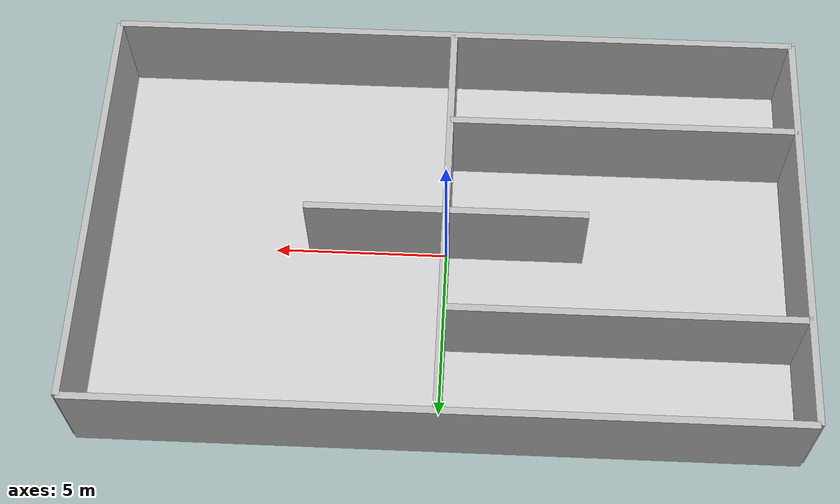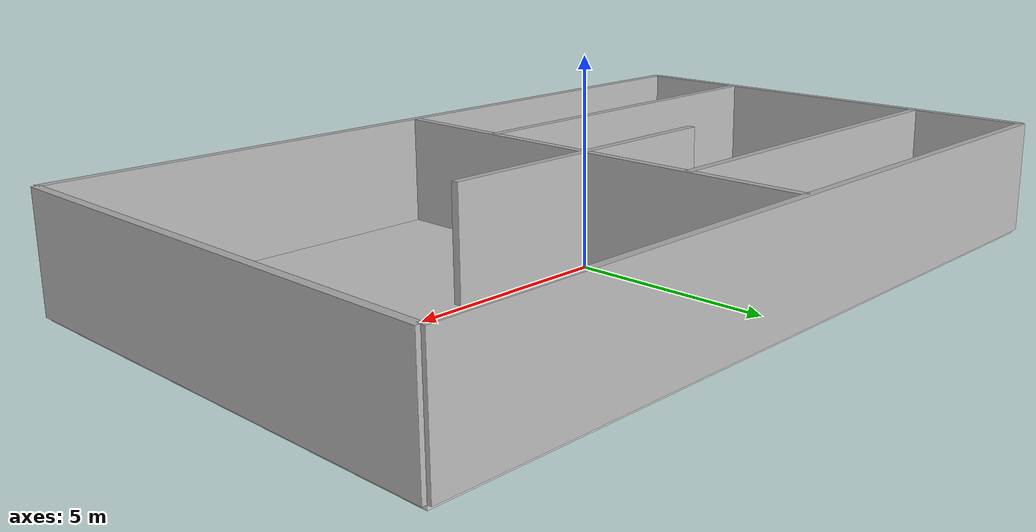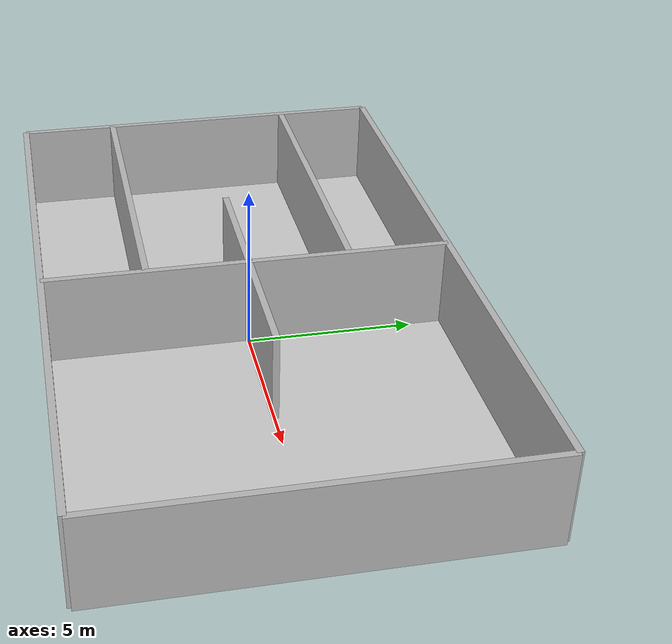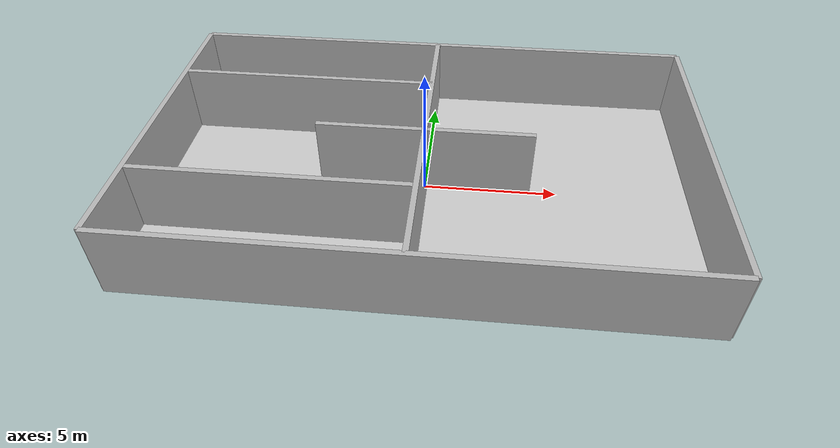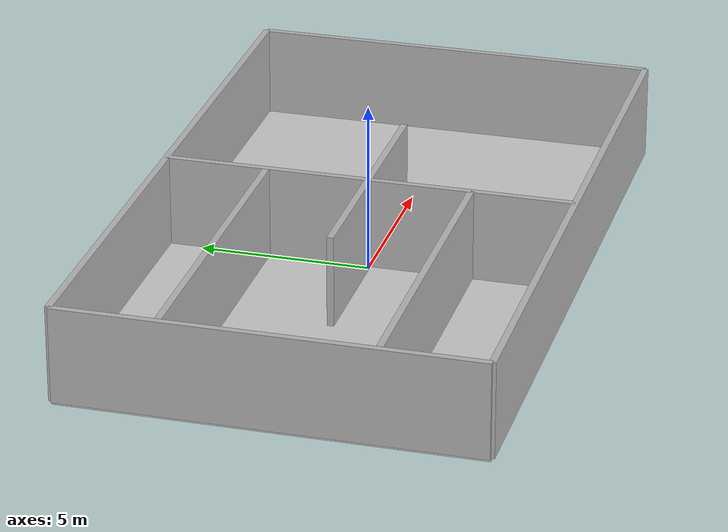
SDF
<?xml version="1.0" ?>
<sdf version="1.8">
  <world name="indoor_world">
    <!-- Physics -->
    <physics name="1ms" type="bullet-featherstone">
      <max_step_size>0.001</max_step_size>
      <real_time_factor>1.0</real_time_factor>
    </physics>

    <!--PLugins-->
    <plugin
      filename="gz-sim-physics-system"
      name="gz::sim::systems::Physics">
    </plugin>
    <plugin
      filename="gz-sim-sensors-system"
      name="gz::sim::systems::Sensors">
      <render_engine>ogre2</render_engine>
    </plugin>
    <plugin
      filename="gz-sim-user-commands-system"
      name="gz::sim::systems::UserCommands">
    </plugin>
    <plugin
      filename="gz-sim-scene-broadcaster-system"
      name="gz::sim::systems::SceneBroadcaster">
    </plugin>

    <!-- Lighting -->
    <light type="directional" name="sun">
      <cast_shadows>true</cast_shadows>
      <pose>0 0 10 0 0 0</pose>
      <diffuse>0.8 0.8 0.8 1</diffuse>
      <specular>0.2 0.2 0.2 1</specular>
      <attenuation>
        <range>1000</range>
        <constant>0.9</constant>
        <linear>0.01</linear>
        <quadratic>0.001</quadratic>
      </attenuation>
      <direction>-0.5 0.1 -0.9</direction>
    </light>

    <!-- A static indoor shell with floor + walls: two rooms and a hallway -->
    <model name="indoor_shell" static="true">
      <pose>0 0 0 0 0 0</pose>

      <!-- Floor: 20m x 12m slab -->
      <link name="floor">
        <pose>0 0 0 0 0 0</pose>
        <collision name="floor_col">
          <geometry>
            <box><size>20 12 0.2</size></box>
          </geometry>
        </collision>
        <visual name="floor_vis">
          <geometry>
            <box><size>20 12 0.2</size></box>
          </geometry>
          <material>
            <ambient>0.8 0.8 0.8 1</ambient>
          </material>
        </visual>
      </link>

      <!-- Perimeter walls: height 2.8m, thickness 0.2m -->
      <!-- North wall -->
      <link name="wall_north">
        <pose>0 6 1.4 0 0 0</pose>
        <collision name="col">
          <geometry><box><size>20 0.2 2.8</size></box></geometry>
        </collision>
        <visual name="vis">
          <geometry><box><size>20 0.2 2.8</size></box></geometry>
        </visual>
      </link>
      <!-- South wall -->
      <link name="wall_south">
        <pose>0 -6 1.4 0 0 0</pose>
        <collision name="col">
          <geometry><box><size>20 0.2 2.8</size></box></geometry>
        </collision>
        <visual name="vis">
          <geometry><box><size>20 0.2 2.8</size></box></geometry>
        </visual>
      </link>
      <!-- East wall -->
      <link name="wall_east">
        <pose>10 0 1.4 0 0 0</pose>
        <collision name="col">
          <geometry><box><size>0.2 12 2.8</size></box></geometry>
        </collision>
        <visual name="vis">
          <geometry><box><size>0.2 12 2.8</size></box></geometry>
        </visual>
      </link>
      <!-- West wall -->
      <link name="wall_west">
        <pose>-10 0 1.4 0 0 0</pose>
        <collision name="col">
          <geometry><box><size>0.2 12 2.8</size></box></geometry>
        </collision>
        <visual name="vis">
          <geometry><box><size>0.2 12 2.8</size></box></geometry>
        </visual>
      </link>

      <!-- Interior partition walls to form two rooms (left/right) and a central hall -->
      <!-- Central north-south wall -->
      <link name="wall_center_ns">
        <pose>0 0 1.4 0 0 0</pose>
        <collision name="col">
          <geometry><box><size>0.2 12 2.8</size></box></geometry>
        </collision>
        <visual name="vis">
          <geometry><box><size>0.2 12 2.8</size></box></geometry>
        </visual>
      </link>

      <!-- Door openings: subtract by leaving gaps (create two short wall segments) -->
      <!-- West room north segment -->
      <link name="wall_west_room_n">
        <pose>-5 3 1.4 0 0 0</pose>
        <collision name="col">
          <geometry><box><size>10 0.2 2.8</size></box></geometry>
        </collision>
        <visual name="vis">
          <geometry><box><size>10 0.2 2.8</size></box></geometry>
        </visual>
      </link>

      <!-- West room south segment (leaves a doorway gap near y≈0) -->
      <link name="wall_west_room_s">
        <pose>-5 -3 1.4 0 0 0</pose>
        <collision name="col">
          <geometry><box><size>10 0.2 2.8</size></box></geometry>
        </collision>
        <visual name="vis">
          <geometry><box><size>10 0.2 2.8</size></box></geometry>
        </visual>
      </link>

      <!-- Short cross walls to shape a hallway near the center -->
      <link name="wall_hall_w">
        <pose>-2 0 1.4 0 0 1.5708</pose>
        <collision name="col">
          <geometry><box><size>0.2 4 2.8</size></box></geometry>
        </collision>
        <visual name="vis">
          <geometry><box><size>0.2 4 2.8</size></box></geometry>
        </visual>
      </link>
      <link name="wall_hall_e">
        <pose> 2 0 1.4 0 0 1.5708</pose>
        <collision name="col">
          <geometry><box><size>0.2 4 2.8</size></box></geometry>
        </collision>
        <visual name="vis">
          <geometry><box><size>0.2 4 2.8</size></box></geometry>
        </visual>
      </link>

      <!-- Ceiling (optional; comment out if you prefer open top) -->
    </model>

    <!-- GUI plugin to allow spawning/editing at runtime -->
    <plugin name="gz-gui" filename="gz-gui-system">
      <gz-gui>
        <plugin filename="WorldControl"/>
        <plugin filename="EntityTree"/>
        <plugin filename="TransformControl"/>
        <plugin filename="Spawn"/>
      </gz-gui>
    </plugin>
  </world>
</sdf>
